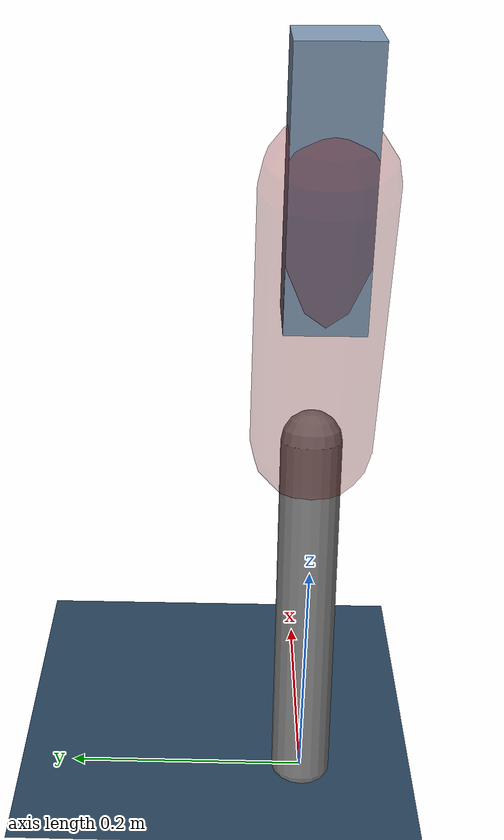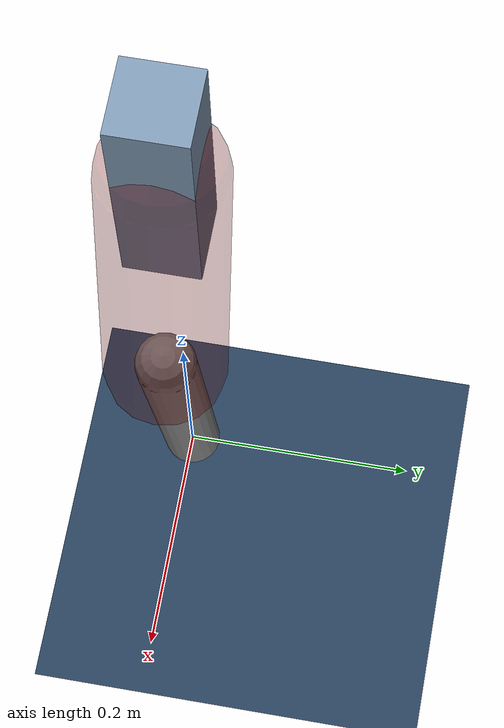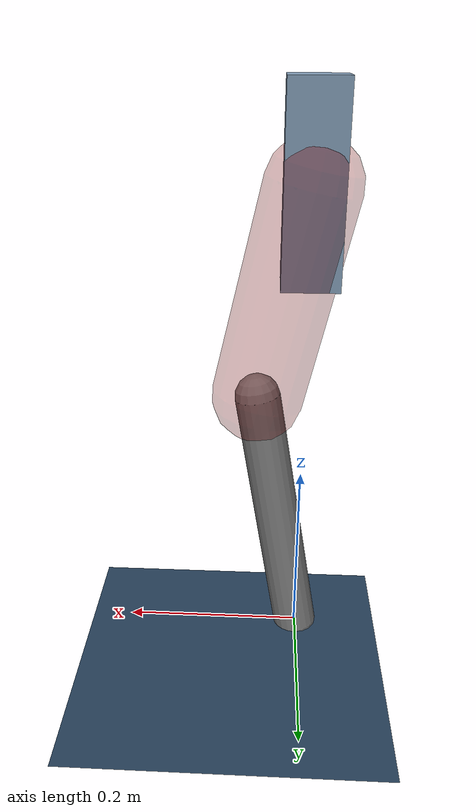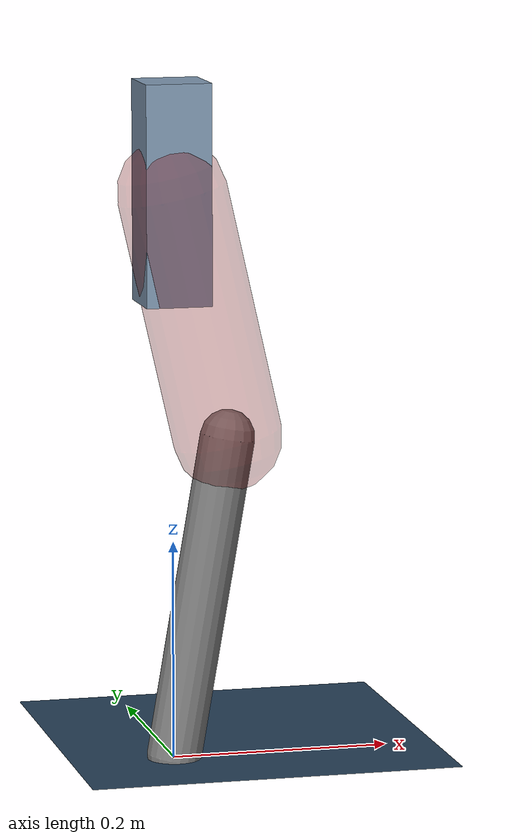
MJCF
<mujoco model="Hopper2D">
	<compiler inertiafromgeom="true" angle="radian" />
	<option timestep="0.001" integrator="implicit" cone="elliptic" solver="Newton" tolerance="1e-10" />

	<default>
		<geom contype="1" conaffinity="1" condim="3" friction="2 0.005 0.0001" solref="0.005 1" />
		<joint limited="true" damping="0.1" />
	</default>

	<asset>
		<texture name="skybox" type="skybox" builtin="gradient" rgb1=".4 .6 .8" rgb2="0 0 0" width="800" height="800" />
		<texture name="grid" type="2d" builtin="checker" rgb1=".1 .2 .3" rgb2=".2 .3 .4" width="300" height="300" mark="edge" markrgb=".2 .3 .4" />
		<material name="ground" texture="grid" texrepeat="1 1" texuniform="true" reflectance="0.1" />
		<material name="leg" rgba="0.5 0.6 0.7 1" />
	</asset>

	<worldbody>

		<geom name="floor" type="plane" size="5 5 0.25" material="ground" />

		<light directional="false" diffuse="0.8 0.8 0.8" specular="0.3 0.3 0.3" pos="0 0 2" dir="0 0 -1" />
		<light mode="targetbodycom" target="base" directional="false" diffuse="0.8 0.8 0.8" specular="0.3 0.3 0.3" pos="0 0 2" dir="0 0 -1" />

		<camera name="fixed" pos="0 -2 1" xyaxes="1 0 0 0 0 1" />
		<camera name="tracking" mode="trackcom" pos="0 -3 1" />

		<body name="root" pos="0 0 0.5194321480679251">
			<joint name="slide_x" type="slide" axis="1 0 0" range="-100 100" />
			<joint name="slide_z" type="slide" axis="0 0 1" range="0 10" />

			<body name="base" pos="0 0 0">
				<geom name="torso" type="box" size="0.03 0.03 0.1" mass="3.488" material="leg" />

				<body name="link1" pos="0 0 0" euler="0 1.3480313586575394 0">
					<joint type="hinge" axis="0 -1 0" pos="0 0 0" name="hinge1" limited="true" range="-3.14 3.14" stiffness="0" damping="0.1" />
					<geom name="thigh" type="capsule" fromto="0 0 0 0.22966153684821336 0 0" size="0.05" rgba="0.5 0 0 0.3" mass="0.8041538421205334" />

					<body name="link2" pos="0.22966153684821336 0 0" euler="0 0.3928413391304291 0">
						<joint type="hinge" axis="0 -1 0" pos="0 0 0" name="hinge2" limited="true" range="-3.14 3.14" stiffness="0" damping="0.1" />
						<geom name="shank" type="capsule" fromto="0 0 0 0.2997706112197118 0 0" size="0.025" mass="0.48321648897576946" />

					</body>
				</body>
			</body>
		</body>
	</worldbody>

	<actuator>
		<motor name="torque1" joint="hinge1" ctrlrange="-202.0679760904768 202.0679760904768" ctrllimited="true" gear="1" />
		<motor name="torque2" joint="hinge2" ctrlrange="-75.55006129841715 75.55006129841715" ctrllimited="true" gear="1" />
	</actuator>
</mujoco>
